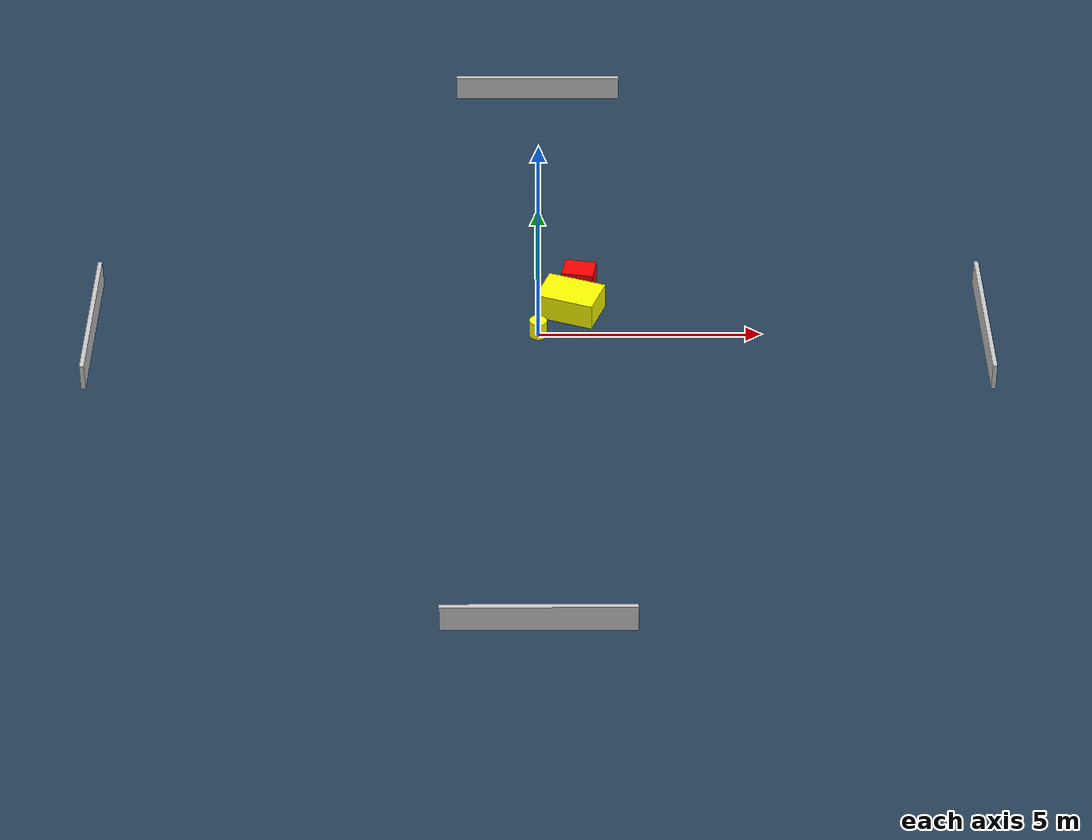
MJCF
<?xml version="1.0" ?>
<mujoco model="generated_environment">
  <option timestep="0.01" integrator="RK4" cone="elliptic"/>
  <default>
    <geom density="1"/>
  </default>
  <asset>
    <texture builtin="gradient" height="3072" name="skybox" rgb1="0.3 0.5 0.7" rgb2="0 0 0" type="skybox" width="512"/>
    <texture builtin="checker" height="300" name="groundplane" rgb1="0.2 0.3 0.4" rgb2="0.1 0.2 0.3" type="2d" width="300"/>
    <material name="groundplane" reflectance="0.2" texrepeat="5 5" texture="groundplane"/>
  </asset>
  <worldbody>
    <light dir="0 0 -1" directional="true" pos="0 0 1.5"/>
    <geom condim="3" friction="0.5 0.005 0.001" material="groundplane" name="floor" pos="0 0 0" size="0 0 0.05" type="plane"/>
    <body name="walls">
      <geom name="wall_1" condim="4" pos="-10.0 0.0 0.3" rgba="0.800000011920929 0.800000011920929 0.800000011920929 1.0" size="0.05 2.0 0.3" type="box"/>
      <geom name="wall_2" condim="4" pos="10.0 0.0 0.3" rgba="0.800000011920929 0.800000011920929 0.800000011920929 1.0" size="0.05 2.0 0.3" type="box"/>
      <geom name="wall_3" condim="4" pos="0.0 -10.0 0.3" rgba="0.800000011920929 0.800000011920929 0.800000011920929 1.0" size="2.0 0.05 0.3" type="box"/>
      <geom name="wall_4" condim="4" pos="0.0 10.0 0.3" rgba="0.800000011920929 0.800000011920929 0.800000011920929 1.0" size="2.0 0.05 0.3" type="box"/>
    </body>
    <body name="robot">
      <joint name="joint_x" type="slide" pos="0 0 0" axis="1 0 0"/>
      <joint name="joint_y" type="slide" pos="0 0 0" axis="0 1 0"/>
      <geom name="robot" type="cylinder" pos="0.0 0.0 0.2" size="0.2 0.2 0.0" mass="5.0" friction="1.0 0.005 0.0001" condim="4" rgba="1.0 1.0 0.0 1.0"/>
    </body>
    <body name="obstacle_1_movable">
      <geom name="obstacle_1_movable" condim="4" pos="0.7304272039741138 0.891368008539104 0.3" euler="0 0 339.5691502598696" friction="0.0 0.005 0.001" rgba="1.0 1.0 0.0 1.0" size="0.6704894031787281 0.46523567958935325 0.3" type="box" mass="0.1"/>
      <joint type="free"/>
    </body>
    <body name="obstacle_2_static">
      <geom name="obstacle_2_static" condim="4" pos="0.9327363014464205 1.7620466676510218 0.3" euler="0 0 79.67656341283981" friction="0.0 0.005 0.001" rgba="1.0 0.0 0.0 1.0" size="0.2809511725307404 0.3586041095067045 0.3" type="box"/>
    </body>
  </worldbody>
  <actuator>
    <motor name="actuator_x" joint="joint_x" gear="1" ctrlrange="-1 1"/>
    <motor name="actuator_y" joint="joint_y" gear="1" ctrlrange="-1 1"/>
  </actuator>
</mujoco>
